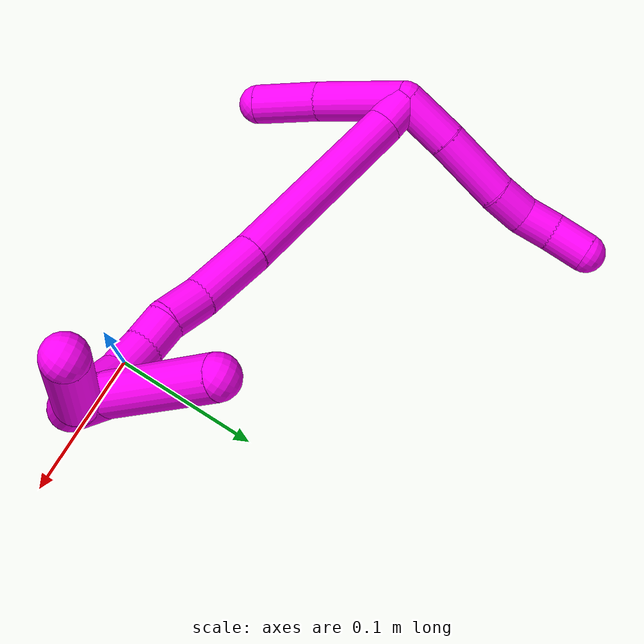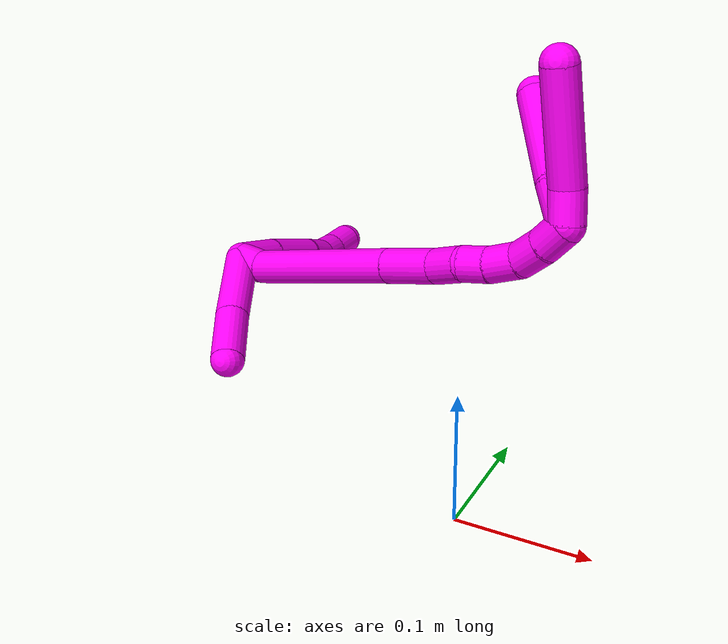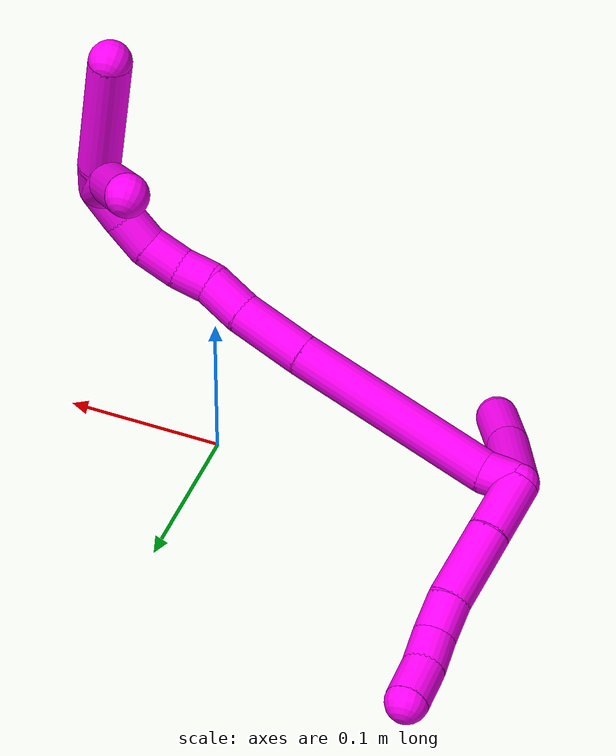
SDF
<sdf version="1.7">
 <world name="default">
  <model name="10">
   <static>0</static>
   <link name="10">
    <collision name="collision-cylinder-e_1_2_8">
     <pose>0.004382 -0.00023 -0.017229 3.12825 0.249039 3.03508</pose>
     <geometry><cylinder><radius>0.0125</radius><length>0.035558</length></cylinder></geometry>
     <surface>
      <friction><ode><mu>1.16</mu><mu2>1.16</mu2><slip1>0</slip1><slip2>0</slip2></ode></friction>
      <contact><ode><kp>1e+06</kp><kd>1</kd><max_vel>0</max_vel><min_depth>0.001</min_depth></ode></contact>
     </surface>
    </collision>
    <visual name="visual-cylinder-e_1_2_8">
     <pose>0.004382 -0.00023 -0.017229 3.12825 0.249039 3.03508</pose>
     <geometry><cylinder><radius>0.0125</radius><length>0.035558</length></cylinder></geometry>
     <material><ambient>1 0 0.964706 1</ambient></material>
    </visual>
    <collision name="collision-cylinder-e_2_8_9">
     <pose>0.01396 -0.002412 -0.056402 3.05287 0.231607 2.41246</pose>
     <geometry><cylinder><radius>0.0125</radius><length>0.045271</length></cylinder></geometry>
     <surface>
      <friction><ode><mu>1.16</mu><mu2>1.16</mu2><slip1>0</slip1><slip2>0</slip2></ode></friction>
      <contact><ode><kp>1e+06</kp><kd>1</kd><max_vel>0</max_vel><min_depth>0.001</min_depth></ode></contact>
     </surface>
    </collision>
    <visual name="visual-cylinder-e_2_8_9">
     <pose>0.01396 -0.002412 -0.056402 3.05287 0.231607 2.41246</pose>
     <geometry><cylinder><radius>0.0125</radius><length>0.045271</length></cylinder></geometry>
     <material><ambient>1 0 0.964706 1</ambient></material>
    </visual>
    <collision name="collision-cylinder-e_3_9_10">
     <pose>0.020295 -0.00528 -0.089714 3.06119 0.099548 1.783</pose>
     <geometry><cylinder><radius>0.0125</radius><length>0.022922</length></cylinder></geometry>
     <surface>
      <friction><ode><mu>1.16</mu><mu2>1.16</mu2><slip1>0</slip1><slip2>0</slip2></ode></friction>
      <contact><ode><kp>1e+06</kp><kd>1</kd><max_vel>0</max_vel><min_depth>0.001</min_depth></ode></contact>
     </surface>
    </collision>
    <visual name="visual-cylinder-e_3_9_10">
     <pose>0.020295 -0.00528 -0.089714 3.06119 0.099548 1.783</pose>
     <geometry><cylinder><radius>0.0125</radius><length>0.022922</length></cylinder></geometry>
     <material><ambient>1 0 0.964706 1</ambient></material>
    </visual>
    <collision name="collision-cylinder-e_4_10_11">
     <pose>0.022666 -0.004207 -0.111525 -2.95334 0.11545 -1.09859</pose>
     <geometry><cylinder><radius>0.0125</radius><length>0.021405</length></cylinder></geometry>
     <surface>
      <friction><ode><mu>1.16</mu><mu2>1.16</mu2><slip1>0</slip1><slip2>0</slip2></ode></friction>
      <contact><ode><kp>1e+06</kp><kd>1</kd><max_vel>0</max_vel><min_depth>0.001</min_depth></ode></contact>
     </surface>
    </collision>
    <visual name="visual-cylinder-e_4_10_11">
     <pose>0.022666 -0.004207 -0.111525 -2.95334 0.11545 -1.09859</pose>
     <geometry><cylinder><radius>0.0125</radius><length>0.021405</length></cylinder></geometry>
     <material><ambient>1 0 0.964706 1</ambient></material>
    </visual>
    <collision name="collision-cylinder-e_5_11_6">
     <pose>0.026845 0.00089 -0.133629 -2.88121 0.239429 -1.48612</pose>
     <geometry><cylinder><radius>0.0125</radius><length>0.024845</length></cylinder></geometry>
     <surface>
      <friction><ode><mu>1.16</mu><mu2>1.16</mu2><slip1>0</slip1><slip2>0</slip2></ode></friction>
      <contact><ode><kp>1e+06</kp><kd>1</kd><max_vel>0</max_vel><min_depth>0.001</min_depth></ode></contact>
     </surface>
    </collision>
    <visual name="visual-cylinder-e_5_11_6">
     <pose>0.026845 0.00089 -0.133629 -2.88121 0.239429 -1.48612</pose>
     <geometry><cylinder><radius>0.0125</radius><length>0.024845</length></cylinder></geometry>
     <material><ambient>1 0 0.964706 1</ambient></material>
    </visual>
    <collision name="collision-cylinder-e_1_2_12">
     <pose>-0.001291 -0.021556 0.019334 0.839677 -0.04455 -0.019889</pose>
     <geometry><cylinder><radius>0.0125</radius><length>0.05797</length></cylinder></geometry>
     <surface>
      <friction><ode><mu>1.16</mu><mu2>1.16</mu2><slip1>0</slip1><slip2>0</slip2></ode></friction>
      <contact><ode><kp>1e+06</kp><kd>1</kd><max_vel>0</max_vel><min_depth>0.001</min_depth></ode></contact>
     </surface>
    </collision>
    <visual name="visual-cylinder-e_1_2_12">
     <pose>-0.001291 -0.021556 0.019334 0.839677 -0.04455 -0.019889</pose>
     <geometry><cylinder><radius>0.0125</radius><length>0.05797</length></cylinder></geometry>
     <material><ambient>1 0 0.964706 1</ambient></material>
    </visual>
    <collision name="collision-cylinder-e_2_12_5">
     <pose>-0.001965 -0.058569 0.052893 0.826908 0.029365 0.012885</pose>
     <geometry><cylinder><radius>0.0125</radius><length>0.04203</length></cylinder></geometry>
     <surface>
      <friction><ode><mu>1.16</mu><mu2>1.16</mu2><slip1>0</slip1><slip2>0</slip2></ode></friction>
      <contact><ode><kp>1e+06</kp><kd>1</kd><max_vel>0</max_vel><min_depth>0.001</min_depth></ode></contact>
     </surface>
    </collision>
    <visual name="visual-cylinder-e_2_12_5">
     <pose>-0.001965 -0.058569 0.052893 0.826908 0.029365 0.012885</pose>
     <geometry><cylinder><radius>0.0125</radius><length>0.04203</length></cylinder></geometry>
     <material><ambient>1 0 0.964706 1</ambient></material>
    </visual>
    <collision name="collision-cylinder-e_1_2_13">
     <pose>0.008304 -0.005853 0.002019 1.23864 0.930079 0.687003</pose>
     <geometry><cylinder><radius>0.0125</radius><length>0.020717</length></cylinder></geometry>
     <surface>
      <friction><ode><mu>1.16</mu><mu2>1.16</mu2><slip1>0</slip1><slip2>0</slip2></ode></friction>
      <contact><ode><kp>1e+06</kp><kd>1</kd><max_vel>0</max_vel><min_depth>0.001</min_depth></ode></contact>
     </surface>
    </collision>
    <visual name="visual-cylinder-e_1_2_13">
     <pose>0.008304 -0.005853 0.002019 1.23864 0.930079 0.687003</pose>
     <geometry><cylinder><radius>0.0125</radius><length>0.020717</length></cylinder></geometry>
     <material><ambient>1 0 0.964706 1</ambient></material>
    </visual>
    <collision name="collision-cylinder-e_2_13_14">
     <pose>0.073188 -0.028478 0.023576 0.709333 1.14372 0.467952</pose>
     <geometry><cylinder><radius>0.0125</radius><length>0.124327</length></cylinder></geometry>
     <surface>
      <friction><ode><mu>1.16</mu><mu2>1.16</mu2><slip1>0</slip1><slip2>0</slip2></ode></friction>
      <contact><ode><kp>1e+06</kp><kd>1</kd><max_vel>0</max_vel><min_depth>0.001</min_depth></ode></contact>
     </surface>
    </collision>
    <visual name="visual-cylinder-e_2_13_14">
     <pose>0.073188 -0.028478 0.023576 0.709333 1.14372 0.467952</pose>
     <geometry><cylinder><radius>0.0125</radius><length>0.124327</length></cylinder></geometry>
     <material><ambient>1 0 0.964706 1</ambient></material>
    </visual>
    <collision name="collision-cylinder-e_3_14_15">
     <pose>0.148777 -0.051116 0.050771 0.653895 1.10119 0.410522</pose>
     <geometry><cylinder><radius>0.0125</radius><length>0.042633</length></cylinder></geometry>
     <surface>
      <friction><ode><mu>1.16</mu><mu2>1.16</mu2><slip1>0</slip1><slip2>0</slip2></ode></friction>
      <contact><ode><kp>1e+06</kp><kd>1</kd><max_vel>0</max_vel><min_depth>0.001</min_depth></ode></contact>
     </surface>
    </collision>
    <visual name="visual-cylinder-e_3_14_15">
     <pose>0.148777 -0.051116 0.050771 0.653895 1.10119 0.410522</pose>
     <geometry><cylinder><radius>0.0125</radius><length>0.042633</length></cylinder></geometry>
     <material><ambient>1 0 0.964706 1</ambient></material>
    </visual>
    <collision name="collision-cylinder-e_4_15_16">
     <pose>0.178737 -0.059394 0.064326 0.387916 1.0438 0.224972</pose>
     <geometry><cylinder><radius>0.0125</radius><length>0.02534</length></cylinder></geometry>
     <surface>
      <friction><ode><mu>1.16</mu><mu2>1.16</mu2><slip1>0</slip1><slip2>0</slip2></ode></friction>
      <contact><ode><kp>1e+06</kp><kd>1</kd><max_vel>0</max_vel><min_depth>0.001</min_depth></ode></contact>
     </surface>
    </collision>
    <visual name="visual-cylinder-e_4_15_16">
     <pose>0.178737 -0.059394 0.064326 0.387916 1.0438 0.224972</pose>
     <geometry><cylinder><radius>0.0125</radius><length>0.02534</length></cylinder></geometry>
     <material><ambient>1 0 0.964706 1</ambient></material>
    </visual>
    <collision name="collision-cylinder-e_5_16_17">
     <pose>0.198966 -0.065021 0.072386 0.979115 1.17521 0.682082</pose>
     <geometry><cylinder><radius>0.0125</radius><length>0.020109</length></cylinder></geometry>
     <surface>
      <friction><ode><mu>1.16</mu><mu2>1.16</mu2><slip1>0</slip1><slip2>0</slip2></ode></friction>
      <contact><ode><kp>1e+06</kp><kd>1</kd><max_vel>0</max_vel><min_depth>0.001</min_depth></ode></contact>
     </surface>
    </collision>
    <visual name="visual-cylinder-e_5_16_17">
     <pose>0.198966 -0.065021 0.072386 0.979115 1.17521 0.682082</pose>
     <geometry><cylinder><radius>0.0125</radius><length>0.020109</length></cylinder></geometry>
     <material><ambient>1 0 0.964706 1</ambient></material>
    </visual>
    <collision name="collision-cylinder-e_6_17_18">
     <pose>0.219242 -0.069894 0.077916 0.457299 1.24184 0.329901</pose>
     <geometry><cylinder><radius>0.0125</radius><length>0.023242</length></cylinder></geometry>
     <surface>
      <friction><ode><mu>1.16</mu><mu2>1.16</mu2><slip1>0</slip1><slip2>0</slip2></ode></friction>
      <contact><ode><kp>1e+06</kp><kd>1</kd><max_vel>0</max_vel><min_depth>0.001</min_depth></ode></contact>
     </surface>
    </collision>
    <visual name="visual-cylinder-e_6_17_18">
     <pose>0.219242 -0.069894 0.077916 0.457299 1.24184 0.329901</pose>
     <geometry><cylinder><radius>0.0125</radius><length>0.023242</length></cylinder></geometry>
     <material><ambient>1 0 0.964706 1</ambient></material>
    </visual>
    <collision name="collision-cylinder-e_7_18_19">
     <pose>0.239939 -0.069694 0.085791 -0.391055 1.1051 -0.243049</pose>
     <geometry><cylinder><radius>0.0125</radius><length>0.02171</length></cylinder></geometry>
     <surface>
      <friction><ode><mu>1.16</mu><mu2>1.16</mu2><slip1>0</slip1><slip2>0</slip2></ode></friction>
      <contact><ode><kp>1e+06</kp><kd>1</kd><max_vel>0</max_vel><min_depth>0.001</min_depth></ode></contact>
     </surface>
    </collision>
    <visual name="visual-cylinder-e_7_18_19">
     <pose>0.239939 -0.069694 0.085791 -0.391055 1.1051 -0.243049</pose>
     <geometry><cylinder><radius>0.0125</radius><length>0.02171</length></cylinder></geometry>
     <material><ambient>1 0 0.964706 1</ambient></material>
    </visual>
    <collision name="collision-cylinder-e_8_19_1">
     <pose>0.259168 -0.064484 0.094549 -0.667493 1.05412 -0.398215</pose>
     <geometry><cylinder><radius>0.0125</radius><length>0.021922</length></cylinder></geometry>
     <surface>
      <friction><ode><mu>1.16</mu><mu2>1.16</mu2><slip1>0</slip1><slip2>0</slip2></ode></friction>
      <contact><ode><kp>1e+06</kp><kd>1</kd><max_vel>0</max_vel><min_depth>0.001</min_depth></ode></contact>
     </surface>
    </collision>
    <visual name="visual-cylinder-e_8_19_1">
     <pose>0.259168 -0.064484 0.094549 -0.667493 1.05412 -0.398215</pose>
     <geometry><cylinder><radius>0.0125</radius><length>0.021922</length></cylinder></geometry>
     <material><ambient>1 0 0.964706 1</ambient></material>
    </visual>
    <collision name="collision-cylinder-e_1_1_20">
     <pose>0.268325 -0.046679 0.094272 -1.8745 -0.024624 0.033521</pose>
     <geometry><cylinder><radius>0.0125</radius><length>0.030303</length></cylinder></geometry>
     <surface>
      <friction><ode><mu>1.16</mu><mu2>1.16</mu2><slip1>0</slip1><slip2>0</slip2></ode></friction>
      <contact><ode><kp>1e+06</kp><kd>1</kd><max_vel>0</max_vel><min_depth>0.001</min_depth></ode></contact>
     </surface>
    </collision>
    <visual name="visual-cylinder-e_1_1_20">
     <pose>0.268325 -0.046679 0.094272 -1.8745 -0.024624 0.033521</pose>
     <geometry><cylinder><radius>0.0125</radius><length>0.030303</length></cylinder></geometry>
     <material><ambient>1 0 0.964706 1</ambient></material>
    </visual>
    <collision name="collision-cylinder-e_2_20_4">
     <pose>0.267299 -0.001495 0.07332 -2.06158 -0.018756 0.031287</pose>
     <geometry><cylinder><radius>0.0125</radius><length>0.069697</length></cylinder></geometry>
     <surface>
      <friction><ode><mu>1.16</mu><mu2>1.16</mu2><slip1>0</slip1><slip2>0</slip2></ode></friction>
      <contact><ode><kp>1e+06</kp><kd>1</kd><max_vel>0</max_vel><min_depth>0.001</min_depth></ode></contact>
     </surface>
    </collision>
    <visual name="visual-cylinder-e_2_20_4">
     <pose>0.267299 -0.001495 0.07332 -2.06158 -0.018756 0.031287</pose>
     <geometry><cylinder><radius>0.0125</radius><length>0.069697</length></cylinder></geometry>
     <material><ambient>1 0 0.964706 1</ambient></material>
    </visual>
    <collision name="collision-cylinder-e_1_1_21">
     <pose>0.27278 -0.050098 0.10008 -1.4555 0.352153 -0.314391</pose>
     <geometry><cylinder><radius>0.0125</radius><length>0.023669</length></cylinder></geometry>
     <surface>
      <friction><ode><mu>1.16</mu><mu2>1.16</mu2><slip1>0</slip1><slip2>0</slip2></ode></friction>
      <contact><ode><kp>1e+06</kp><kd>1</kd><max_vel>0</max_vel><min_depth>0.001</min_depth></ode></contact>
     </surface>
    </collision>
    <visual name="visual-cylinder-e_1_1_21">
     <pose>0.27278 -0.050098 0.10008 -1.4555 0.352153 -0.314391</pose>
     <geometry><cylinder><radius>0.0125</radius><length>0.023669</length></cylinder></geometry>
     <material><ambient>1 0 0.964706 1</ambient></material>
    </visual>
    <collision name="collision-cylinder-e_2_21_3">
     <pose>0.288096 -0.005131 0.114737 -1.19521 0.29877 -0.204165</pose>
     <geometry><cylinder><radius>0.0125</radius><length>0.076331</length></cylinder></geometry>
     <surface>
      <friction><ode><mu>1.16</mu><mu2>1.16</mu2><slip1>0</slip1><slip2>0</slip2></ode></friction>
      <contact><ode><kp>1e+06</kp><kd>1</kd><max_vel>0</max_vel><min_depth>0.001</min_depth></ode></contact>
     </surface>
    </collision>
    <visual name="visual-cylinder-e_2_21_3">
     <pose>0.288096 -0.005131 0.114737 -1.19521 0.29877 -0.204165</pose>
     <geometry><cylinder><radius>0.0125</radius><length>0.076331</length></cylinder></geometry>
     <material><ambient>1 0 0.964706 1</ambient></material>
    </visual>
    <collision name="collision-sphere-3">
     <pose>0.29933 0.028801 0.128117 0 -0 0</pose>
     <geometry><sphere><radius>0.0125</radius></sphere></geometry>
     <surface>
      <friction><ode><mu>1.16</mu><mu2>1.16</mu2><slip1>0</slip1><slip2>0</slip2></ode></friction>
      <contact><ode><kp>1e+06</kp><kd>1</kd><max_vel>0</max_vel><min_depth>0.001</min_depth></ode></contact>
     </surface>
    </collision>
    <visual name="visual-sphere-3">
     <pose>0.29933 0.028801 0.128117 0 -0 0</pose>
     <geometry><sphere><radius>0.0125</radius></sphere></geometry>
     <material><ambient>1 0 0.964706 1</ambient></material>
    </visual>
    <collision name="collision-sphere-21">
     <pose>0.276863 -0.039063 0.101358 0 -0 0</pose>
     <geometry><sphere><radius>0.0125</radius></sphere></geometry>
     <surface>
      <friction><ode><mu>1.16</mu><mu2>1.16</mu2><slip1>0</slip1><slip2>0</slip2></ode></friction>
      <contact><ode><kp>1e+06</kp><kd>1</kd><max_vel>0</max_vel><min_depth>0.001</min_depth></ode></contact>
     </surface>
    </collision>
    <visual name="visual-sphere-21">
     <pose>0.276863 -0.039063 0.101358 0 -0 0</pose>
     <geometry><sphere><radius>0.0125</radius></sphere></geometry>
     <material><ambient>1 0 0.964706 1</ambient></material>
    </visual>
    <collision name="collision-sphere-4">
     <pose>0.266645 0.029234 0.056898 0 -0 0</pose>
     <geometry><sphere><radius>0.0125</radius></sphere></geometry>
     <surface>
      <friction><ode><mu>1.16</mu><mu2>1.16</mu2><slip1>0</slip1><slip2>0</slip2></ode></friction>
      <contact><ode><kp>1e+06</kp><kd>1</kd><max_vel>0</max_vel><min_depth>0.001</min_depth></ode></contact>
     </surface>
    </collision>
    <visual name="visual-sphere-4">
     <pose>0.266645 0.029234 0.056898 0 -0 0</pose>
     <geometry><sphere><radius>0.0125</radius></sphere></geometry>
     <material><ambient>1 0 0.964706 1</ambient></material>
    </visual>
    <collision name="collision-sphere-20">
     <pose>0.267952 -0.032225 0.089742 0 -0 0</pose>
     <geometry><sphere><radius>0.0125</radius></sphere></geometry>
     <surface>
      <friction><ode><mu>1.16</mu><mu2>1.16</mu2><slip1>0</slip1><slip2>0</slip2></ode></friction>
      <contact><ode><kp>1e+06</kp><kd>1</kd><max_vel>0</max_vel><min_depth>0.001</min_depth></ode></contact>
     </surface>
    </collision>
    <visual name="visual-sphere-20">
     <pose>0.267952 -0.032225 0.089742 0 -0 0</pose>
     <geometry><sphere><radius>0.0125</radius></sphere></geometry>
     <material><ambient>1 0 0.964706 1</ambient></material>
    </visual>
    <collision name="collision-sphere-6">
     <pose>0.029791 0.003997 -0.14529 0 -0 0</pose>
     <geometry><sphere><radius>0.0125</radius></sphere></geometry>
     <surface>
      <friction><ode><mu>1.16</mu><mu2>1.16</mu2><slip1>0</slip1><slip2>0</slip2></ode></friction>
      <contact><ode><kp>1e+06</kp><kd>1</kd><max_vel>0</max_vel><min_depth>0.001</min_depth></ode></contact>
     </surface>
    </collision>
    <visual name="visual-sphere-6">
     <pose>0.029791 0.003997 -0.14529 0 -0 0</pose>
     <geometry><sphere><radius>0.0125</radius></sphere></geometry>
     <material><ambient>1 0 0.964706 1</ambient></material>
    </visual>
    <collision name="collision-sphere-11">
     <pose>0.023899 -0.002217 -0.121968 0 -0 0</pose>
     <geometry><sphere><radius>0.0125</radius></sphere></geometry>
     <surface>
      <friction><ode><mu>1.16</mu><mu2>1.16</mu2><slip1>0</slip1><slip2>0</slip2></ode></friction>
      <contact><ode><kp>1e+06</kp><kd>1</kd><max_vel>0</max_vel><min_depth>0.001</min_depth></ode></contact>
     </surface>
    </collision>
    <visual name="visual-sphere-11">
     <pose>0.023899 -0.002217 -0.121968 0 -0 0</pose>
     <geometry><sphere><radius>0.0125</radius></sphere></geometry>
     <material><ambient>1 0 0.964706 1</ambient></material>
    </visual>
    <collision name="collision-sphere-10">
     <pose>0.021434 -0.006196 -0.101081 0 -0 0</pose>
     <geometry><sphere><radius>0.0125</radius></sphere></geometry>
     <surface>
      <friction><ode><mu>1.16</mu><mu2>1.16</mu2><slip1>0</slip1><slip2>0</slip2></ode></friction>
      <contact><ode><kp>1e+06</kp><kd>1</kd><max_vel>0</max_vel><min_depth>0.001</min_depth></ode></contact>
     </surface>
    </collision>
    <visual name="visual-sphere-10">
     <pose>0.021434 -0.006196 -0.101081 0 -0 0</pose>
     <geometry><sphere><radius>0.0125</radius></sphere></geometry>
     <material><ambient>1 0 0.964706 1</ambient></material>
    </visual>
    <collision name="collision-sphere-9">
     <pose>0.019156 -0.004364 -0.078346 0 -0 0</pose>
     <geometry><sphere><radius>0.0125</radius></sphere></geometry>
     <surface>
      <friction><ode><mu>1.16</mu><mu2>1.16</mu2><slip1>0</slip1><slip2>0</slip2></ode></friction>
      <contact><ode><kp>1e+06</kp><kd>1</kd><max_vel>0</max_vel><min_depth>0.001</min_depth></ode></contact>
     </surface>
    </collision>
    <visual name="visual-sphere-9">
     <pose>0.019156 -0.004364 -0.078346 0 -0 0</pose>
     <geometry><sphere><radius>0.0125</radius></sphere></geometry>
     <material><ambient>1 0 0.964706 1</ambient></material>
    </visual>
    <collision name="collision-sphere-2">
     <geometry><sphere><radius>0.0125</radius></sphere></geometry>
     <surface>
      <friction><ode><mu>1.16</mu><mu2>1.16</mu2><slip1>0</slip1><slip2>0</slip2></ode></friction>
      <contact><ode><kp>1e+06</kp><kd>1</kd><max_vel>0</max_vel><min_depth>0.001</min_depth></ode></contact>
     </surface>
    </collision>
    <visual name="visual-sphere-2">
     <geometry><sphere><radius>0.0125</radius></sphere></geometry>
     <material><ambient>1 0 0.964706 1</ambient></material>
    </visual>
    <collision name="collision-sphere-19">
     <pose>0.249638 -0.067836 0.090297 0 -0 0</pose>
     <geometry><sphere><radius>0.0125</radius></sphere></geometry>
     <surface>
      <friction><ode><mu>1.16</mu><mu2>1.16</mu2><slip1>0</slip1><slip2>0</slip2></ode></friction>
      <contact><ode><kp>1e+06</kp><kd>1</kd><max_vel>0</max_vel><min_depth>0.001</min_depth></ode></contact>
     </surface>
    </collision>
    <visual name="visual-sphere-19">
     <pose>0.249638 -0.067836 0.090297 0 -0 0</pose>
     <geometry><sphere><radius>0.0125</radius></sphere></geometry>
     <material><ambient>1 0 0.964706 1</ambient></material>
    </visual>
    <collision name="collision-sphere-8">
     <pose>0.008764 -0.00046 -0.034458 0 -0 0</pose>
     <geometry><sphere><radius>0.0125</radius></sphere></geometry>
     <surface>
      <friction><ode><mu>1.16</mu><mu2>1.16</mu2><slip1>0</slip1><slip2>0</slip2></ode></friction>
      <contact><ode><kp>1e+06</kp><kd>1</kd><max_vel>0</max_vel><min_depth>0.001</min_depth></ode></contact>
     </surface>
    </collision>
    <visual name="visual-sphere-8">
     <pose>0.008764 -0.00046 -0.034458 0 -0 0</pose>
     <geometry><sphere><radius>0.0125</radius></sphere></geometry>
     <material><ambient>1 0 0.964706 1</ambient></material>
    </visual>
    <collision name="collision-sphere-12">
     <pose>-0.002582 -0.043112 0.038669 0 -0 0</pose>
     <geometry><sphere><radius>0.0125</radius></sphere></geometry>
     <surface>
      <friction><ode><mu>1.16</mu><mu2>1.16</mu2><slip1>0</slip1><slip2>0</slip2></ode></friction>
      <contact><ode><kp>1e+06</kp><kd>1</kd><max_vel>0</max_vel><min_depth>0.001</min_depth></ode></contact>
     </surface>
    </collision>
    <visual name="visual-sphere-12">
     <pose>-0.002582 -0.043112 0.038669 0 -0 0</pose>
     <geometry><sphere><radius>0.0125</radius></sphere></geometry>
     <material><ambient>1 0 0.964706 1</ambient></material>
    </visual>
    <collision name="collision-sphere-5">
     <pose>-0.001348 -0.074026 0.067117 0 -0 0</pose>
     <geometry><sphere><radius>0.0125</radius></sphere></geometry>
     <surface>
      <friction><ode><mu>1.16</mu><mu2>1.16</mu2><slip1>0</slip1><slip2>0</slip2></ode></friction>
      <contact><ode><kp>1e+06</kp><kd>1</kd><max_vel>0</max_vel><min_depth>0.001</min_depth></ode></contact>
     </surface>
    </collision>
    <visual name="visual-sphere-5">
     <pose>-0.001348 -0.074026 0.067117 0 -0 0</pose>
     <geometry><sphere><radius>0.0125</radius></sphere></geometry>
     <material><ambient>1 0 0.964706 1</ambient></material>
    </visual>
    <collision name="collision-sphere-13">
     <pose>0.016608 -0.011707 0.004038 0 -0 0</pose>
     <geometry><sphere><radius>0.0125</radius></sphere></geometry>
     <surface>
      <friction><ode><mu>1.16</mu><mu2>1.16</mu2><slip1>0</slip1><slip2>0</slip2></ode></friction>
      <contact><ode><kp>1e+06</kp><kd>1</kd><max_vel>0</max_vel><min_depth>0.001</min_depth></ode></contact>
     </surface>
    </collision>
    <visual name="visual-sphere-13">
     <pose>0.016608 -0.011707 0.004038 0 -0 0</pose>
     <geometry><sphere><radius>0.0125</radius></sphere></geometry>
     <material><ambient>1 0 0.964706 1</ambient></material>
    </visual>
    <collision name="collision-sphere-14">
     <pose>0.129768 -0.045249 0.043114 0 -0 0</pose>
     <geometry><sphere><radius>0.0125</radius></sphere></geometry>
     <surface>
      <friction><ode><mu>1.16</mu><mu2>1.16</mu2><slip1>0</slip1><slip2>0</slip2></ode></friction>
      <contact><ode><kp>1e+06</kp><kd>1</kd><max_vel>0</max_vel><min_depth>0.001</min_depth></ode></contact>
     </surface>
    </collision>
    <visual name="visual-sphere-14">
     <pose>0.129768 -0.045249 0.043114 0 -0 0</pose>
     <geometry><sphere><radius>0.0125</radius></sphere></geometry>
     <material><ambient>1 0 0.964706 1</ambient></material>
    </visual>
    <collision name="collision-sphere-15">
     <pose>0.167786 -0.056984 0.058427 0 -0 0</pose>
     <geometry><sphere><radius>0.0125</radius></sphere></geometry>
     <surface>
      <friction><ode><mu>1.16</mu><mu2>1.16</mu2><slip1>0</slip1><slip2>0</slip2></ode></friction>
      <contact><ode><kp>1e+06</kp><kd>1</kd><max_vel>0</max_vel><min_depth>0.001</min_depth></ode></contact>
     </surface>
    </collision>
    <visual name="visual-sphere-15">
     <pose>0.167786 -0.056984 0.058427 0 -0 0</pose>
     <geometry><sphere><radius>0.0125</radius></sphere></geometry>
     <material><ambient>1 0 0.964706 1</ambient></material>
    </visual>
    <collision name="collision-sphere-16">
     <pose>0.189688 -0.061805 0.070225 0 -0 0</pose>
     <geometry><sphere><radius>0.0125</radius></sphere></geometry>
     <surface>
      <friction><ode><mu>1.16</mu><mu2>1.16</mu2><slip1>0</slip1><slip2>0</slip2></ode></friction>
      <contact><ode><kp>1e+06</kp><kd>1</kd><max_vel>0</max_vel><min_depth>0.001</min_depth></ode></contact>
     </surface>
    </collision>
    <visual name="visual-sphere-16">
     <pose>0.189688 -0.061805 0.070225 0 -0 0</pose>
     <geometry><sphere><radius>0.0125</radius></sphere></geometry>
     <material><ambient>1 0 0.964706 1</ambient></material>
    </visual>
    <collision name="collision-sphere-17">
     <pose>0.208244 -0.068237 0.074547 0 -0 0</pose>
     <geometry><sphere><radius>0.0125</radius></sphere></geometry>
     <surface>
      <friction><ode><mu>1.16</mu><mu2>1.16</mu2><slip1>0</slip1><slip2>0</slip2></ode></friction>
      <contact><ode><kp>1e+06</kp><kd>1</kd><max_vel>0</max_vel><min_depth>0.001</min_depth></ode></contact>
     </surface>
    </collision>
    <visual name="visual-sphere-17">
     <pose>0.208244 -0.068237 0.074547 0 -0 0</pose>
     <geometry><sphere><radius>0.0125</radius></sphere></geometry>
     <material><ambient>1 0 0.964706 1</ambient></material>
    </visual>
    <collision name="collision-sphere-18">
     <pose>0.23024 -0.071552 0.081284 0 -0 0</pose>
     <geometry><sphere><radius>0.0125</radius></sphere></geometry>
     <surface>
      <friction><ode><mu>1.16</mu><mu2>1.16</mu2><slip1>0</slip1><slip2>0</slip2></ode></friction>
      <contact><ode><kp>1e+06</kp><kd>1</kd><max_vel>0</max_vel><min_depth>0.001</min_depth></ode></contact>
     </surface>
    </collision>
    <visual name="visual-sphere-18">
     <pose>0.23024 -0.071552 0.081284 0 -0 0</pose>
     <geometry><sphere><radius>0.0125</radius></sphere></geometry>
     <material><ambient>1 0 0.964706 1</ambient></material>
    </visual>
    <collision name="collision-sphere-1">
     <pose>0.268698 -0.061133 0.098802 0 -0 0</pose>
     <geometry><sphere><radius>0.0125</radius></sphere></geometry>
     <surface>
      <friction><ode><mu>1.16</mu><mu2>1.16</mu2><slip1>0</slip1><slip2>0</slip2></ode></friction>
      <contact><ode><kp>1e+06</kp><kd>1</kd><max_vel>0</max_vel><min_depth>0.001</min_depth></ode></contact>
     </surface>
    </collision>
    <visual name="visual-sphere-1">
     <pose>0.268698 -0.061133 0.098802 0 -0 0</pose>
     <geometry><sphere><radius>0.0125</radius></sphere></geometry>
     <material><ambient>1 0 0.964706 1</ambient></material>
    </visual>
    <inertial>
     <pose>0.130115 -0.027091 0.03397 0 -0 0</pose>
     <mass>0.75</mass>
     <inertia>
      <ixx>0.000213</ixx>
      <ixy>0</ixy>
      <ixz>0</ixz>
      <iyy>0.000239</iyy>
      <iyz>0</iyz>
      <izz>-0.000182</izz>
     </inertia>
    </inertial>
   </link>
   <pose>-0.218164 0.079828 0.121742 1.15637 -0.428743 0.267076</pose>
  </model>
 </world>
</sdf>
